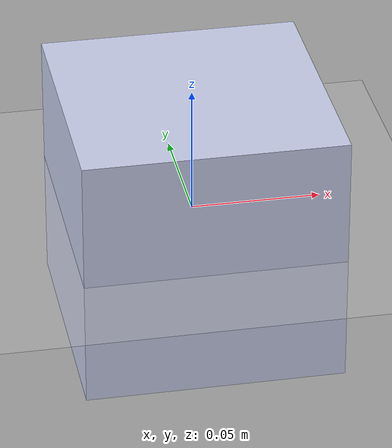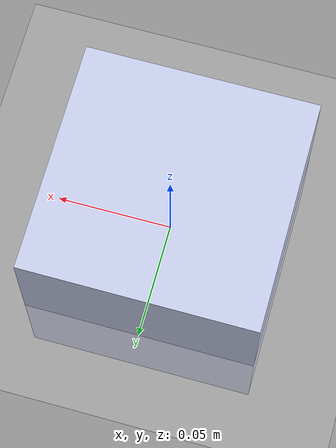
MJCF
<?xml version='1.0' encoding='utf-8'?>
<mujoco model="wheel_legged_urdf_pkg">
  <compiler angle="radian" meshdir="meshes/" texturedir="textures/" />
  <option timestep="0.001" gravity="0 0 -9.81" iterations="50" solver="Newton" />
  <asset />
  <worldbody>
    <geom name="ground" type="plane" size="10 10 0.1" rgba="0.8 0.8 0.8 1" friction="1 0.1 0.1" />
    <body name="base_link">
      <inertial mass="2.00185606218299" pos="0.00121782667412224 -0.000210352203166787 -2.21299226362964E-05" quat="1 0 0 0" diaginertia="0.00494176488313629 0.00564170400699066 0.00881398606635347" />
      <geom name="base_link_visual" pos="0 0 0" type="box" size="0.05 0.05 0.05" rgba="0.792156862745098 0.819607843137255 0.933333333333333 1" />
      <geom name="base_link_collision" pos="0 0 0" type="box" size="0.05 0.05 0.05" />
      <joint name="left_front_joint_link" type="hinge" axis="0 0 -1" range="-3.14 3.14" pos="0.042498 0.1395 0.00013155" />
      <body name="left_front_motor_link">
        <inertial mass="0.141618184762676" pos="0.0624436684240075 0.000619326059130704 0.0200324549537225" quat="1 0 0 0" diaginertia="3.01866212630707E-05 0.000434045739664063 0.000450595261060971" />
        <geom name="left_front_motor_link_visual" pos="0 0 0" type="box" size="0.05 0.05 0.05" rgba="0.796078431372549 0.823529411764706 0.937254901960784 1" />
        <geom name="left_front_motor_link_collision" pos="0 0 0" type="box" size="0.05 0.05 0.05" />
        <joint name="left_l1_joint_link" type="hinge" axis="0 0 -1" range="-3.14 3.14" pos="0.14999 0.0015005 0.0238" />
        <body name="left_l1_link">
          <inertial mass="0.177912779401" pos="-0.095105462450709 0.0731775307867209 -0.0163" quat="1 0 0 0" diaginertia="0.000418025769227047 0.000683016195362116 0.00109442528532047" />
          <geom name="left_l1_link_visual" pos="0 0 0" type="box" size="0.05 0.05 0.05" rgba="0.796078431372549 0.823529411764706 0.937254901960784 1" />
          <geom name="left_l1_link_collision" pos="0 0 0" type="box" size="0.05 0.05 0.05" />
        </body>
      </body>
      <joint name="left_back_joint_link" type="hinge" axis="0 0 -1" range="-3.14 3.14" pos="-0.042501 0.1395 -0.00014986" />
      <body name="left_back_motor_link">
        <inertial mass="0.115659747495916" pos="-0.0749796058107964 0.0036928214728846 0.00747310925542913" quat="1 0 0 0" diaginertia="2.26464431379227E-05 0.000319765274780509 0.000338116683794751" />
        <geom name="left_back_motor_link_visual" pos="0 0 0" type="box" size="0.05 0.05 0.05" rgba="0.796078431372549 0.823529411764706 0.937254901960784 1" />
        <geom name="left_back_motor_link_collision" pos="0 0 0" type="box" size="0.05 0.05 0.05" />
        <joint name="left_l4_joint_link" type="hinge" axis="0 0 1" range="-3.14 3.14" pos="-0.14982 0.0073876 0.0062" />
        <body name="left_l4_link">
          <inertial mass="0.248961638545411" pos="0.128060879717462 0.0924384050013035 0.0178378642085842" quat="1 0 0 0" diaginertia="0.000729426860709992 0.00131469091952802 0.00202550485596196" />
          <geom name="left_l4_link_visual" pos="0 0 0" type="box" size="0.05 0.05 0.05" rgba="0.796078431372549 0.823529411764706 0.937254901960784 1" />
          <geom name="left_l4_link_collision" pos="0 0 0" type="box" size="0.05 0.05 0.05" />
          <joint name="left_l3_joint_link" type="hinge" pos="0.1946 0.14047 0.0088" />
          <body name="left_l3_link">
            <inertial mass="0.115219399015165" pos="-0.000243308150557599 0.000117251658979897 0.0403173391634845" quat="1 0 0 0" diaginertia="4.94098181788803E-05 4.89676896049995E-05 8.66983692952939E-05" />
            <geom name="left_l3_link_visual" pos="0 0 0" type="box" size="0.05 0.05 0.05" rgba="0.792156862745098 0.819607843137255 0.933333333333333 1" />
            <geom name="left_l3_link_collision" pos="0 0 0" type="box" size="0.05 0.05 0.05" />
            <joint name="left_wheel_joint_link" type="hinge" axis="0 0 -1" pos="0 0 0.0565" />
            <body name="left_wheel_motor_link">
              <inertial mass="0.842051413621127" pos="1.13167687540439E-07 1.25858476307528E-07 -0.00499719779399502" quat="1 0 0 0" diaginertia="0.00251019461435954 0.00251018902018574 0.00474412594811298" />
              <geom name="left_wheel_motor_link_visual" pos="0 0 0" type="box" size="0.05 0.05 0.05" rgba="0.792156862745098 0.819607843137255 0.933333333333333 1" />
              <geom name="left_wheel_motor_link_collision" pos="0 0 0" type="box" size="0.05 0.05 0.05" />
            </body>
          </body>
        </body>
      </body>
      <joint name="right_front_joint_link" type="hinge" axis="0 0 -1" range="-3.14 3.14" pos="0.042501 -0.1395 0.00013156" />
      <body name="right_front_motor_link">
        <inertial mass="0.141618184759225" pos="0.0623057259191661 0.00415660632329509 0.0200324549608647" quat="1 0 0 0" diaginertia="3.19275897950573E-05 0.000432304770765368 0.000450595260936554" />
        <geom name="right_front_motor_link_visual" pos="0 0 0" type="box" size="0.05 0.05 0.05" rgba="0.796078431372549 0.823529411764706 0.937254901960784 1" />
        <geom name="right_front_motor_link_collision" pos="0 0 0" type="box" size="0.05 0.05 0.05" />
        <joint name="right_l1_joint_link" type="hinge" axis="0 0 -1" range="-3.14 3.14" pos="0.14967 0.0099718 0.0238" />
        <body name="right_l1_link">
          <inertial mass="0.177912779401" pos="-0.0932955290225116 -0.0754714798080031 -0.0162999999999999" quat="1 0 0 0" diaginertia="0.000442512909634909 0.000658529054954254 0.00109442528532047" />
          <geom name="right_l1_link_visual" pos="0 0 0" type="box" size="0.05 0.05 0.05" rgba="0.796078431372549 0.823529411764706 0.937254901960784 1" />
          <geom name="right_l1_link_collision" pos="0 0 0" type="box" size="0.05 0.05 0.05" />
        </body>
      </body>
      <joint name="right_back_joint_link" type="hinge" axis="0 0 -1" range="-3.14 3.14" pos="-0.042498 -0.1395 -0.00014985" />
      <body name="right_back_motor_link">
        <inertial mass="0.115659747495916" pos="-0.075017236320334 -0.00291294758678277 0.00747310925542902" quat="1 0 0 0" diaginertia="2.23727688233546E-05 0.000320038949095077 0.000338116683794751" />
        <geom name="right_back_motor_link_visual" pos="0 0 0" type="box" size="0.05 0.05 0.05" rgba="0.796078431372549 0.823529411764706 0.937254901960784 1" />
        <geom name="right_back_motor_link_collision" pos="0 0 0" type="box" size="0.05 0.05 0.05" />
        <joint name="right_l4_joint_link" type="hinge" axis="0 0 1" range="-3.14 3.14" pos="-0.14989 -0.0058294 0.0062" />
        <body name="right_l4_link">
          <inertial mass="0.24896163452195" pos="0.130296403284804 -0.0892597043985118 0.0178378639085093" quat="1 0 0 0" diaginertia="0.000686392557995977 0.00135772521521225 0.00202550485005715" />
          <geom name="right_l4_link_visual" pos="0 0 0" type="box" size="0.05 0.05 0.05" rgba="0.796078431372549 0.823529411764706 0.937254901960784 1" />
          <geom name="right_l4_link_collision" pos="0 0 0" type="box" size="0.05 0.05 0.05" />
          <joint name="right_l3_joint_link" type="hinge" pos="0.198 -0.13564 0.0088" />
          <body name="right_l3_link">
            <inertial mass="0.115219399567085" pos="-2.80713764217733E-05 -0.000268623950909944 0.0403173391022381" quat="1 0 0 0" diaginertia="4.94114719513777E-05 4.89660363029196E-05 8.66983696437399E-05" />
            <geom name="right_l3_link_visual" pos="0 0 0" type="box" size="0.05 0.05 0.05" rgba="0.792156862745098 0.819607843137255 0.933333333333333 1" />
            <geom name="right_l3_link_collision" pos="0 0 0" type="box" size="0.05 0.05 0.05" />
            <joint name="right_wheel_joint_link" type="hinge" axis="0 0 -1" pos="0 0 0.0565" />
            <body name="right_wheel_motor_link">
              <inertial mass="0.842051685465564" pos="-6.16438811410977E-08 -1.57630152236576E-07 -0.00499719843039104" quat="1 0 0 0" diaginertia="0.002510149306242 0.0025102352737572 0.00474412701360746" />
              <geom name="right_wheel_motor_link_visual" pos="0 0 0" type="box" size="0.05 0.05 0.05" rgba="0.792156862745098 0.819607843137255 0.933333333333333 1" />
              <geom name="right_wheel_motor_link_collision" pos="0 0 0" type="box" size="0.05 0.05 0.05" />
            </body>
          </body>
        </body>
      </body>
      <joint name="imu_joint_link" type="hinge" pos="0.0086888 0.0615 0.021391" />
      <body name="imu_link">
        <inertial mass="0.0006342289369769" pos="-0.00295011190315089 6.01878603506481E-05 -0.0022678069753778" quat="1 0 0 0" diaginertia="1.61792914987704E-08 9.69970107461154E-09 2.47220721297651E-08" />
        <geom name="imu_link_visual" pos="0 0 0" type="box" size="0.05 0.05 0.05" rgba="1 1 1 1" />
        <geom name="imu_link_collision" pos="0 0 0" type="box" size="0.05 0.05 0.05" />
      </body>
      <joint name="lidar_joint_link" type="hinge" pos="0.0450664766561181 -0.000722222222221321 0.103849771542335" />
      <body name="laser">
        <inertial mass="0.0619661956356509" pos="-0.000295667186511292 2.02745806254789E-17 -0.00821757116891281" quat="1 0 0 0" diaginertia="1.51239273004584E-05 1.49535540724283E-05 1.86073781537633E-05" />
        <geom name="laser_visual" pos="0 0 0" type="box" size="0.05 0.05 0.05" rgba="0.796078431372549 0.823529411764706 0.937254901960784 1" />
        <geom name="laser_collision" pos="0 0 0" type="box" size="0.05 0.05 0.05" />
      </body>
    </body>
  </worldbody>
  <actuator>
    <motor name="left_front_joint_link_motor" joint="left_front_joint_link" gear="1" ctrllimited="true" ctrlrange="-10 10" />
    <motor name="left_l1_joint_link_motor" joint="left_l1_joint_link" gear="1" ctrllimited="true" ctrlrange="-10 10" />
    <motor name="left_back_joint_link_motor" joint="left_back_joint_link" gear="1" ctrllimited="true" ctrlrange="-10 10" />
    <motor name="left_l4_joint_link_motor" joint="left_l4_joint_link" gear="1" ctrllimited="true" ctrlrange="-10 10" />
    <motor name="left_wheel_joint_link_motor" joint="left_wheel_joint_link" gear="1" ctrllimited="true" ctrlrange="-10 10" />
    <motor name="right_front_joint_link_motor" joint="right_front_joint_link" gear="1" ctrllimited="true" ctrlrange="-10 10" />
    <motor name="right_l1_joint_link_motor" joint="right_l1_joint_link" gear="1" ctrllimited="true" ctrlrange="-10 10" />
    <motor name="right_back_joint_link_motor" joint="right_back_joint_link" gear="1" ctrllimited="true" ctrlrange="-10 10" />
    <motor name="right_l4_joint_link_motor" joint="right_l4_joint_link" gear="1" ctrllimited="true" ctrlrange="-10 10" />
    <motor name="right_wheel_joint_link_motor" joint="right_wheel_joint_link" gear="1" ctrllimited="true" ctrlrange="-10 10" />
  </actuator>
</mujoco>
